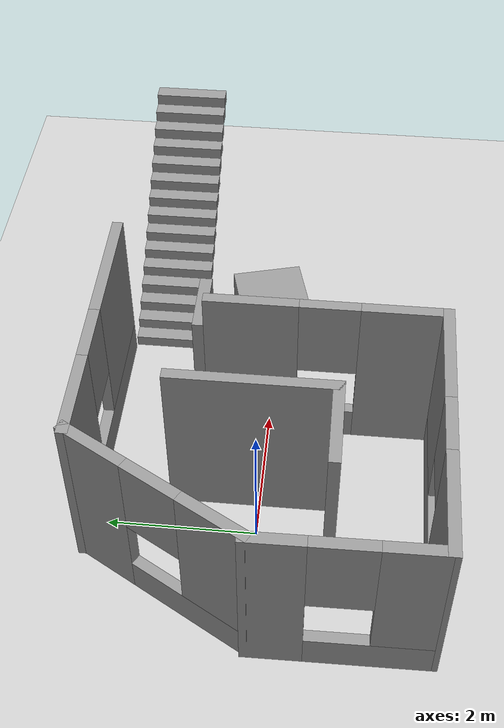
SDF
<sdf version="1.7">
 <world name="default">
  <light name="sun" type="directional">
   <pose>0 0 10 0 -0 0</pose>
   <diffuse>0.8 0.8 0.8 1</diffuse>
   <specular>0.2 0.2 0.2 1</specular>
   <attenuation>
    <range>1000</range>
    <constant>0.9</constant>
    <linear>0.01</linear>
    <quadratic>0.001</quadratic>
   </attenuation>
   <direction>-0.5 0.1 -0.9</direction>
   <spot><inner_angle>0</inner_angle><outer_angle>0</outer_angle><falloff>0</falloff></spot>
  </light>
  <model name="ground_plane">
   <static>1</static>
   <link name="link">
    <collision name="collision">
     <geometry><plane><normal>0 0 1</normal><size>100 100</size></plane></geometry>
     <surface>
      <contact><collide_bitmask>65535</collide_bitmask></contact>
      <friction><ode><mu>100</mu><mu2>50</mu2></ode></friction>
     </surface>
    </collision>
    <visual name="visual">
     <cast_shadows>0</cast_shadows>
     <geometry><plane><normal>0 0 1</normal><size>100 100</size></plane></geometry>
     <material>
      <script><uri>file://media/materials/scripts/gazebo.material</uri><name>Gazebo/Grey</name></script>
     </material>
    </visual>
   </link>
  </model>
  <gravity>0 0 -9.8</gravity>
  <magnetic_field>6e-06 2.3e-05 -4.2e-05</magnetic_field>
  <atmosphere type="adiabatic"/>
  <physics type="ode">
   <max_step_size>0.001</max_step_size>
   <real_time_factor>1</real_time_factor>
   <real_time_update_rate>1000</real_time_update_rate>
  </physics>
  <scene><ambient>0.4 0.4 0.4 1</ambient><background>0.7 0.7 0.7 1</background><shadows>1</shadows></scene>
  <audio><device>default</device></audio>
  <spherical_coordinates>
   <surface_model>EARTH_WGS84</surface_model>
   <latitude_deg>0</latitude_deg>
   <longitude_deg>0</longitude_deg>
   <elevation>0</elevation>
   <heading_deg>0</heading_deg>
  </spherical_coordinates>
  <model name="unit_box">
   <pose>3.58796 0.103175 0.499999 -5e-06 -3e-06 0.260898</pose>
   <link name="link">
    <inertial>
     <mass>1</mass>
     <inertia>
      <ixx>0.166667</ixx>
      <ixy>0</ixy>
      <ixz>0</ixz>
      <iyy>0.166667</iyy>
      <iyz>0</iyz>
      <izz>0.166667</izz>
     </inertia>
    </inertial>
    <collision name="collision"><geometry><box><size>1 1 1</size></box></geometry></collision>
    <visual name="visual">
     <geometry><box><size>1 1 1</size></box></geometry>
     <material>
      <script><name>Gazebo/Grey</name><uri>file://media/materials/scripts/gazebo.material</uri></script>
     </material>
    </visual>
   </link>
  </model>
  <model name="Untitled">
   <pose>2.34822 -0.024277 0 0 -0 0</pose>
   <link name="Door_0">
    <collision name="Door_0_Collision">
     <geometry><box><size>0.9 0.17 2</size></box></geometry>
     <pose>0 0 1 0 -0 0</pose>
    </collision>
    <visual name="Door_0_Visual">
     <pose>0 0 1 0 -0 0</pose>
     <geometry><box><size>0.9 0.17 2</size></box></geometry>
     <material>
      <script><uri>file://media/materials/scripts/gazebo.material</uri><name>Gazebo/Grey</name></script>
     </material>
    </visual>
    <pose>-0.040773 0.972245 0 0 -0 0</pose>
   </link>
   <link name="Stairs_0">
    <visual name="Stairs_0_Visual_0">
     <pose>1.05596 1.63725 0.083333 0 -0 1.5708</pose>
     <geometry><box><size>1.0532 0.213827 0.166667</size></box></geometry>
     <material>
      <script><uri>file://media/materials/scripts/gazebo.material</uri><name>Gazebo/Grey</name></script>
      <ambient>1 1 1 1</ambient>
     </material>
     <meta><layer>0</layer></meta>
    </visual>
    <collision name="Stairs_0_Collision_0">
     <geometry><box><size>1.0532 0.213827 0.166667</size></box></geometry>
     <pose>1.05596 1.63725 0.083333 0 -0 1.5708</pose>
    </collision>
    <visual name="Stairs_0_Visual_1">
     <pose>1.26979 1.63725 0.25 0 -0 1.5708</pose>
     <geometry><box><size>1.0532 0.213827 0.166667</size></box></geometry>
     <material>
      <script><uri>file://media/materials/scripts/gazebo.material</uri><name>Gazebo/Grey</name></script>
      <ambient>1 1 1 1</ambient>
     </material>
     <meta><layer>0</layer></meta>
    </visual>
    <collision name="Stairs_0_Collision_1">
     <geometry><box><size>1.0532 0.213827 0.166667</size></box></geometry>
     <pose>1.26979 1.63725 0.25 0 -0 1.5708</pose>
    </collision>
    <visual name="Stairs_0_Visual_2">
     <pose>1.48361 1.63725 0.416667 0 -0 1.5708</pose>
     <geometry><box><size>1.0532 0.213827 0.166667</size></box></geometry>
     <material>
      <script><uri>file://media/materials/scripts/gazebo.material</uri><name>Gazebo/Grey</name></script>
      <ambient>1 1 1 1</ambient>
     </material>
     <meta><layer>0</layer></meta>
    </visual>
    <collision name="Stairs_0_Collision_2">
     <geometry><box><size>1.0532 0.213827 0.166667</size></box></geometry>
     <pose>1.48361 1.63725 0.416667 0 -0 1.5708</pose>
    </collision>
    <visual name="Stairs_0_Visual_3">
     <pose>1.69744 1.63725 0.583333 0 -0 1.5708</pose>
     <geometry><box><size>1.0532 0.213827 0.166667</size></box></geometry>
     <material>
      <script><uri>file://media/materials/scripts/gazebo.material</uri><name>Gazebo/Grey</name></script>
      <ambient>1 1 1 1</ambient>
     </material>
     <meta><layer>0</layer></meta>
    </visual>
    <collision name="Stairs_0_Collision_3">
     <geometry><box><size>1.0532 0.213827 0.166667</size></box></geometry>
     <pose>1.69744 1.63725 0.583333 0 -0 1.5708</pose>
    </collision>
    <visual name="Stairs_0_Visual_4">
     <pose>1.91127 1.63725 0.75 0 -0 1.5708</pose>
     <geometry><box><size>1.0532 0.213827 0.166667</size></box></geometry>
     <material>
      <script><uri>file://media/materials/scripts/gazebo.material</uri><name>Gazebo/Grey</name></script>
      <ambient>1 1 1 1</ambient>
     </material>
     <meta><layer>0</layer></meta>
    </visual>
    <collision name="Stairs_0_Collision_4">
     <geometry><box><size>1.0532 0.213827 0.166667</size></box></geometry>
     <pose>1.91127 1.63725 0.75 0 -0 1.5708</pose>
    </collision>
    <visual name="Stairs_0_Visual_5">
     <pose>2.12509 1.63725 0.916667 0 -0 1.5708</pose>
     <geometry><box><size>1.0532 0.213827 0.166667</size></box></geometry>
     <material>
      <script><uri>file://media/materials/scripts/gazebo.material</uri><name>Gazebo/Grey</name></script>
      <ambient>1 1 1 1</ambient>
     </material>
     <meta><layer>0</layer></meta>
    </visual>
    <collision name="Stairs_0_Collision_5">
     <geometry><box><size>1.0532 0.213827 0.166667</size></box></geometry>
     <pose>2.12509 1.63725 0.916667 0 -0 1.5708</pose>
    </collision>
    <visual name="Stairs_0_Visual_6">
     <pose>2.33892 1.63725 1.08333 0 -0 1.5708</pose>
     <geometry><box><size>1.0532 0.213827 0.166667</size></box></geometry>
     <material>
      <script><uri>file://media/materials/scripts/gazebo.material</uri><name>Gazebo/Grey</name></script>
      <ambient>1 1 1 1</ambient>
     </material>
     <meta><layer>0</layer></meta>
    </visual>
    <collision name="Stairs_0_Collision_6">
     <geometry><box><size>1.0532 0.213827 0.166667</size></box></geometry>
     <pose>2.33892 1.63725 1.08333 0 -0 1.5708</pose>
    </collision>
    <visual name="Stairs_0_Visual_7">
     <pose>2.55275 1.63725 1.25 0 -0 1.5708</pose>
     <geometry><box><size>1.0532 0.213827 0.166667</size></box></geometry>
     <material>
      <script><uri>file://media/materials/scripts/gazebo.material</uri><name>Gazebo/Grey</name></script>
      <ambient>1 1 1 1</ambient>
     </material>
     <meta><layer>0</layer></meta>
    </visual>
    <collision name="Stairs_0_Collision_7">
     <geometry><box><size>1.0532 0.213827 0.166667</size></box></geometry>
     <pose>2.55275 1.63725 1.25 0 -0 1.5708</pose>
    </collision>
    <visual name="Stairs_0_Visual_8">
     <pose>2.76657 1.63725 1.41667 0 -0 1.5708</pose>
     <geometry><box><size>1.0532 0.213827 0.166667</size></box></geometry>
     <material>
      <script><uri>file://media/materials/scripts/gazebo.material</uri><name>Gazebo/Grey</name></script>
      <ambient>1 1 1 1</ambient>
     </material>
     <meta><layer>0</layer></meta>
    </visual>
    <collision name="Stairs_0_Collision_8">
     <geometry><box><size>1.0532 0.213827 0.166667</size></box></geometry>
     <pose>2.76657 1.63725 1.41667 0 -0 1.5708</pose>
    </collision>
    <visual name="Stairs_0_Visual_9">
     <pose>2.9804 1.63725 1.58333 0 -0 1.5708</pose>
     <geometry><box><size>1.0532 0.213827 0.166667</size></box></geometry>
     <material>
      <script><uri>file://media/materials/scripts/gazebo.material</uri><name>Gazebo/Grey</name></script>
      <ambient>1 1 1 1</ambient>
     </material>
     <meta><layer>0</layer></meta>
    </visual>
    <collision name="Stairs_0_Collision_9">
     <geometry><box><size>1.0532 0.213827 0.166667</size></box></geometry>
     <pose>2.9804 1.63725 1.58333 0 -0 1.5708</pose>
    </collision>
    <visual name="Stairs_0_Visual_10">
     <pose>3.19422 1.63725 1.75 0 -0 1.5708</pose>
     <geometry><box><size>1.0532 0.213827 0.166667</size></box></geometry>
     <material>
      <script><uri>file://media/materials/scripts/gazebo.material</uri><name>Gazebo/Grey</name></script>
      <ambient>1 1 1 1</ambient>
     </material>
     <meta><layer>0</layer></meta>
    </visual>
    <collision name="Stairs_0_Collision_10">
     <geometry><box><size>1.0532 0.213827 0.166667</size></box></geometry>
     <pose>3.19422 1.63725 1.75 0 -0 1.5708</pose>
    </collision>
    <visual name="Stairs_0_Visual_11">
     <pose>3.40805 1.63725 1.91667 0 -0 1.5708</pose>
     <geometry><box><size>1.0532 0.213827 0.166667</size></box></geometry>
     <material>
      <script><uri>file://media/materials/scripts/gazebo.material</uri><name>Gazebo/Grey</name></script>
      <ambient>1 1 1 1</ambient>
     </material>
     <meta><layer>0</layer></meta>
    </visual>
    <collision name="Stairs_0_Collision_11">
     <geometry><box><size>1.0532 0.213827 0.166667</size></box></geometry>
     <pose>3.40805 1.63725 1.91667 0 -0 1.5708</pose>
    </collision>
    <visual name="Stairs_0_Visual_12">
     <pose>3.62188 1.63725 2.08333 0 -0 1.5708</pose>
     <geometry><box><size>1.0532 0.213827 0.166667</size></box></geometry>
     <material>
      <script><uri>file://media/materials/scripts/gazebo.material</uri><name>Gazebo/Grey</name></script>
      <ambient>1 1 1 1</ambient>
     </material>
     <meta><layer>0</layer></meta>
    </visual>
    <collision name="Stairs_0_Collision_12">
     <geometry><box><size>1.0532 0.213827 0.166667</size></box></geometry>
     <pose>3.62188 1.63725 2.08333 0 -0 1.5708</pose>
    </collision>
    <visual name="Stairs_0_Visual_13">
     <pose>3.8357 1.63725 2.25 0 -0 1.5708</pose>
     <geometry><box><size>1.0532 0.213827 0.166667</size></box></geometry>
     <material>
      <script><uri>file://media/materials/scripts/gazebo.material</uri><name>Gazebo/Grey</name></script>
      <ambient>1 1 1 1</ambient>
     </material>
     <meta><layer>0</layer></meta>
    </visual>
    <collision name="Stairs_0_Collision_13">
     <geometry><box><size>1.0532 0.213827 0.166667</size></box></geometry>
     <pose>3.8357 1.63725 2.25 0 -0 1.5708</pose>
    </collision>
    <visual name="Stairs_0_Visual_14">
     <pose>4.04953 1.63725 2.41667 0 -0 1.5708</pose>
     <geometry><box><size>1.0532 0.213827 0.166667</size></box></geometry>
     <material>
      <script><uri>file://media/materials/scripts/gazebo.material</uri><name>Gazebo/Grey</name></script>
      <ambient>1 1 1 1</ambient>
     </material>
     <meta><layer>0</layer></meta>
    </visual>
    <collision name="Stairs_0_Collision_14">
     <geometry><box><size>1.0532 0.213827 0.166667</size></box></geometry>
     <pose>4.04953 1.63725 2.41667 0 -0 1.5708</pose>
    </collision>
   </link>
   <link name="Wall_0">
    <pose>-2.25822 -2.27572 0 0 -0 0</pose>
    <visual name="Wall_0_Visual_0">
     <pose>-1.14598 0 1.25 0 -0 0</pose>
     <geometry><box><size>1.45803 0.15 2.5</size></box></geometry>
     <material>
      <script><uri>file://media/materials/scripts/gazebo.material</uri><name>Gazebo/Grey</name></script>
      <ambient>1 1 1 1</ambient>
     </material>
     <meta><layer>0</layer></meta>
    </visual>
    <collision name="Wall_0_Collision_0">
     <geometry><box><size>1.45803 0.15 2.5</size></box></geometry>
     <pose>-1.14598 0 1.25 0 -0 0</pose>
    </collision>
    <visual name="Wall_0_Visual_1">
     <pose>0.729016 0 0.25 0 -0 0</pose>
     <geometry><box><size>2.29197 0.15 0.5</size></box></geometry>
     <material>
      <script><uri>file://media/materials/scripts/gazebo.material</uri><name>Gazebo/Grey</name></script>
      <ambient>1 1 1 1</ambient>
     </material>
     <meta><layer>0</layer></meta>
    </visual>
    <collision name="Wall_0_Collision_1">
     <geometry><box><size>2.29197 0.15 0.5</size></box></geometry>
     <pose>0.729016 0 0.25 0 -0 0</pose>
    </collision>
    <visual name="Wall_0_Visual_2">
     <pose>1.12902 0 1.5 0 -0 0</pose>
     <geometry><box><size>1.49197 0.15 2</size></box></geometry>
     <material>
      <script><uri>file://media/materials/scripts/gazebo.material</uri><name>Gazebo/Grey</name></script>
      <ambient>1 1 1 1</ambient>
     </material>
     <meta><layer>0</layer></meta>
    </visual>
    <collision name="Wall_0_Collision_2">
     <geometry><box><size>1.49197 0.15 2</size></box></geometry>
     <pose>1.12902 0 1.5 0 -0 0</pose>
    </collision>
    <visual name="Wall_0_Visual_3">
     <pose>-0.016968 0 1.9 0 -0 0</pose>
     <geometry><box><size>0.8 0.15 1.2</size></box></geometry>
     <material>
      <script><uri>file://media/materials/scripts/gazebo.material</uri><name>Gazebo/Grey</name></script>
      <ambient>1 1 1 1</ambient>
     </material>
     <meta><layer>0</layer></meta>
    </visual>
    <collision name="Wall_0_Collision_3">
     <geometry><box><size>0.8 0.15 1.2</size></box></geometry>
     <pose>-0.016968 0 1.9 0 -0 0</pose>
    </collision>
   </link>
   <link name="Wall_1">
    <pose>-0.458222 -0.725723 0 0 -0 1.5708</pose>
    <visual name="Wall_1_Visual_0">
     <pose>-1.02802 0 1.25 0 -0 0</pose>
     <geometry><box><size>1.19396 0.15 2.5</size></box></geometry>
     <material>
      <script><uri>file://media/materials/scripts/gazebo.material</uri><name>Gazebo/Grey</name></script>
      <ambient>1 1 1 1</ambient>
     </material>
     <meta><layer>0</layer></meta>
    </visual>
    <collision name="Wall_1_Collision_0">
     <geometry><box><size>1.19396 0.15 2.5</size></box></geometry>
     <pose>-1.02802 0 1.25 0 -0 0</pose>
    </collision>
    <visual name="Wall_1_Visual_1">
     <pose>0.596978 0 0.25 0 -0 0</pose>
     <geometry><box><size>2.05604 0.15 0.5</size></box></geometry>
     <material>
      <script><uri>file://media/materials/scripts/gazebo.material</uri><name>Gazebo/Grey</name></script>
      <ambient>1 1 1 1</ambient>
     </material>
     <meta><layer>0</layer></meta>
    </visual>
    <collision name="Wall_1_Collision_1">
     <geometry><box><size>2.05604 0.15 0.5</size></box></geometry>
     <pose>0.596978 0 0.25 0 -0 0</pose>
    </collision>
    <visual name="Wall_1_Visual_2">
     <pose>0.996978 0 1.5 0 -0 0</pose>
     <geometry><box><size>1.25604 0.15 2</size></box></geometry>
     <material>
      <script><uri>file://media/materials/scripts/gazebo.material</uri><name>Gazebo/Grey</name></script>
      <ambient>1 1 1 1</ambient>
     </material>
     <meta><layer>0</layer></meta>
    </visual>
    <collision name="Wall_1_Collision_2">
     <geometry><box><size>1.25604 0.15 2</size></box></geometry>
     <pose>0.996978 0 1.5 0 -0 0</pose>
    </collision>
    <visual name="Wall_1_Visual_3">
     <pose>-0.031044 0 1.9 0 -0 0</pose>
     <geometry><box><size>0.8 0.15 1.2</size></box></geometry>
     <material>
      <script><uri>file://media/materials/scripts/gazebo.material</uri><name>Gazebo/Grey</name></script>
      <ambient>1 1 1 1</ambient>
     </material>
     <meta><layer>0</layer></meta>
    </visual>
    <collision name="Wall_1_Collision_3">
     <geometry><box><size>0.8 0.15 1.2</size></box></geometry>
     <pose>-0.031044 0 1.9 0 -0 0</pose>
    </collision>
   </link>
   <link name="Wall_3">
    <pose>-0.980594 2.24905 0 0 -0 0</pose>
    <visual name="Wall_3_Visual_0">
     <pose>-1.25279 0 1.25 0 -0 0</pose>
     <geometry><box><size>1.24441 0.15 2.5</size></box></geometry>
     <material>
      <script><uri>file://media/materials/scripts/gazebo.material</uri><name>Gazebo/Grey</name></script>
      <ambient>1 1 1 1</ambient>
     </material>
     <meta><layer>0</layer></meta>
    </visual>
    <collision name="Wall_3_Collision_0">
     <geometry><box><size>1.24441 0.15 2.5</size></box></geometry>
     <pose>-1.25279 0 1.25 0 -0 0</pose>
    </collision>
    <visual name="Wall_3_Visual_1">
     <pose>0.622206 0 0.25 0 -0 0</pose>
     <geometry><box><size>2.50559 0.15 0.5</size></box></geometry>
     <material>
      <script><uri>file://media/materials/scripts/gazebo.material</uri><name>Gazebo/Grey</name></script>
      <ambient>1 1 1 1</ambient>
     </material>
     <meta><layer>0</layer></meta>
    </visual>
    <collision name="Wall_3_Collision_1">
     <geometry><box><size>2.50559 0.15 0.5</size></box></geometry>
     <pose>0.622206 0 0.25 0 -0 0</pose>
    </collision>
    <visual name="Wall_3_Visual_2">
     <pose>1.02221 0 1.5 0 -0 0</pose>
     <geometry><box><size>1.70559 0.15 2</size></box></geometry>
     <material>
      <script><uri>file://media/materials/scripts/gazebo.material</uri><name>Gazebo/Grey</name></script>
      <ambient>1 1 1 1</ambient>
     </material>
     <meta><layer>0</layer></meta>
    </visual>
    <collision name="Wall_3_Collision_2">
     <geometry><box><size>1.70559 0.15 2</size></box></geometry>
     <pose>1.02221 0 1.5 0 -0 0</pose>
    </collision>
    <visual name="Wall_3_Visual_3">
     <pose>-0.230588 0 1.9 0 -0 0</pose>
     <geometry><box><size>0.8 0.15 1.2</size></box></geometry>
     <material>
      <script><uri>file://media/materials/scripts/gazebo.material</uri><name>Gazebo/Grey</name></script>
      <ambient>1 1 1 1</ambient>
     </material>
     <meta><layer>0</layer></meta>
    </visual>
    <collision name="Wall_3_Collision_3">
     <geometry><box><size>0.8 0.15 1.2</size></box></geometry>
     <pose>-0.230588 0 1.9 0 -0 0</pose>
    </collision>
   </link>
   <link name="Wall_5">
    <pose>-3.40399 1.12322 0 0 -0 -2.0944</pose>
    <visual name="Wall_5_Visual_0">
     <pose>-0.886179 0 1.25 0 -0 0</pose>
     <geometry><box><size>0.977642 0.15 2.5</size></box></geometry>
     <material>
      <script><uri>file://media/materials/scripts/gazebo.material</uri><name>Gazebo/Grey</name></script>
      <ambient>1 1 1 1</ambient>
     </material>
     <meta><layer>0</layer></meta>
    </visual>
    <collision name="Wall_5_Collision_0">
     <geometry><box><size>0.977642 0.15 2.5</size></box></geometry>
     <pose>-0.886179 0 1.25 0 -0 0</pose>
    </collision>
    <visual name="Wall_5_Visual_1">
     <pose>0.488821 0 0.25 0 -0 0</pose>
     <geometry><box><size>1.77236 0.15 0.5</size></box></geometry>
     <material>
      <script><uri>file://media/materials/scripts/gazebo.material</uri><name>Gazebo/Grey</name></script>
      <ambient>1 1 1 1</ambient>
     </material>
     <meta><layer>0</layer></meta>
    </visual>
    <collision name="Wall_5_Collision_1">
     <geometry><box><size>1.77236 0.15 0.5</size></box></geometry>
     <pose>0.488821 0 0.25 0 -0 0</pose>
    </collision>
    <visual name="Wall_5_Visual_2">
     <pose>0.888821 0 1.5 0 -0 0</pose>
     <geometry><box><size>0.972358 0.15 2</size></box></geometry>
     <material>
      <script><uri>file://media/materials/scripts/gazebo.material</uri><name>Gazebo/Grey</name></script>
      <ambient>1 1 1 1</ambient>
     </material>
     <meta><layer>0</layer></meta>
    </visual>
    <collision name="Wall_5_Collision_2">
     <geometry><box><size>0.972358 0.15 2</size></box></geometry>
     <pose>0.888821 0 1.5 0 -0 0</pose>
    </collision>
    <visual name="Wall_5_Visual_3">
     <pose>0.002642 0 1.9 0 -0 0</pose>
     <geometry><box><size>0.8 0.15 1.2</size></box></geometry>
     <material>
      <script><uri>file://media/materials/scripts/gazebo.material</uri><name>Gazebo/Grey</name></script>
      <ambient>1 1 1 1</ambient>
     </material>
     <meta><layer>0</layer></meta>
    </visual>
    <collision name="Wall_5_Collision_3">
     <geometry><box><size>0.8 0.15 1.2</size></box></geometry>
     <pose>0.002642 0 1.9 0 -0 0</pose>
    </collision>
   </link>
   <link name="Wall_6">
    <pose>-4.06941 -1.13917 0 0 -0 -1.56096</pose>
    <visual name="Wall_6_Visual_0">
     <pose>-0.824592 0 1.25 0 -0 0</pose>
     <geometry><box><size>0.774136 0.15 2.5</size></box></geometry>
     <material>
      <script><uri>file://media/materials/scripts/gazebo.material</uri><name>Gazebo/Grey</name></script>
      <ambient>1 1 1 1</ambient>
     </material>
     <meta><layer>0</layer></meta>
    </visual>
    <collision name="Wall_6_Collision_0">
     <geometry><box><size>0.774136 0.15 2.5</size></box></geometry>
     <pose>-0.824592 0 1.25 0 -0 0</pose>
    </collision>
    <visual name="Wall_6_Visual_1">
     <pose>0.387068 0 0.25 0 -0 0</pose>
     <geometry><box><size>1.64918 0.15 0.5</size></box></geometry>
     <material>
      <script><uri>file://media/materials/scripts/gazebo.material</uri><name>Gazebo/Grey</name></script>
      <ambient>1 1 1 1</ambient>
     </material>
     <meta><layer>0</layer></meta>
    </visual>
    <collision name="Wall_6_Collision_1">
     <geometry><box><size>1.64918 0.15 0.5</size></box></geometry>
     <pose>0.387068 0 0.25 0 -0 0</pose>
    </collision>
    <visual name="Wall_6_Visual_2">
     <pose>0.787068 0 1.5 0 -0 0</pose>
     <geometry><box><size>0.849185 0.15 2</size></box></geometry>
     <material>
      <script><uri>file://media/materials/scripts/gazebo.material</uri><name>Gazebo/Grey</name></script>
      <ambient>1 1 1 1</ambient>
     </material>
     <meta><layer>0</layer></meta>
    </visual>
    <collision name="Wall_6_Collision_2">
     <geometry><box><size>0.849185 0.15 2</size></box></geometry>
     <pose>0.787068 0 1.5 0 -0 0</pose>
    </collision>
    <visual name="Wall_6_Visual_3">
     <pose>-0.037524 0 1.9 0 -0 0</pose>
     <geometry><box><size>0.8 0.15 1.2</size></box></geometry>
     <material>
      <script><uri>file://media/materials/scripts/gazebo.material</uri><name>Gazebo/Grey</name></script>
      <ambient>1 1 1 1</ambient>
     </material>
     <meta><layer>0</layer></meta>
    </visual>
    <collision name="Wall_6_Collision_3">
     <geometry><box><size>0.8 0.15 1.2</size></box></geometry>
     <pose>-0.037524 0 1.9 0 -0 0</pose>
    </collision>
   </link>
   <static>1</static>
  </model>
  <model name="Untitled_0">
   <pose>-0.0155 0.0877 0 0 -0 0</pose>
   <link name="Wall_0">
    <collision name="Wall_0_Collision">
     <geometry><box><size>2.25 0.15 2.5</size></box></geometry>
     <pose>0 0 1.25 0 -0 0</pose>
    </collision>
    <visual name="Wall_0_Visual">
     <pose>0 0 1.25 0 -0 0</pose>
     <geometry><box><size>2.25 0.15 2.5</size></box></geometry>
     <material>
      <script><uri>file://media/materials/scripts/gazebo.material</uri><name>Gazebo/Grey</name></script>
      <ambient>1 1 1 1</ambient>
     </material>
     <meta><layer>0</layer></meta>
    </visual>
    <pose>0.55 -0 0 0 -0 1.5708</pose>
   </link>
   <link name="Wall_2">
    <collision name="Wall_2_Collision">
     <geometry><box><size>1.25 0.15 2.5</size></box></geometry>
     <pose>0 0 1.25 0 -0 0</pose>
    </collision>
    <visual name="Wall_2_Visual">
     <pose>0 0 1.25 0 -0 0</pose>
     <geometry><box><size>1.25 0.15 2.5</size></box></geometry>
     <material>
      <script><uri>file://media/materials/scripts/gazebo.material</uri><name>Gazebo/Grey</name></script>
      <ambient>1 1 1 1</ambient>
     </material>
     <meta><layer>0</layer></meta>
    </visual>
    <pose>-0 -1.05 0 0 -0 3.14159</pose>
   </link>
   <static>1</static>
  </model>
 </world>
</sdf>
